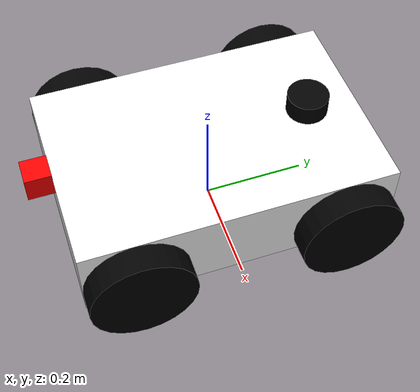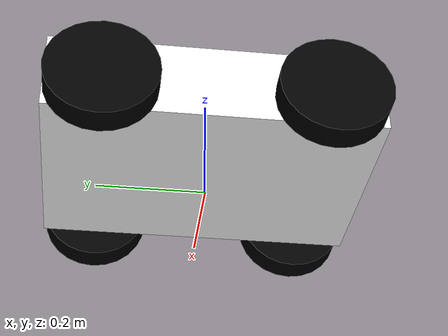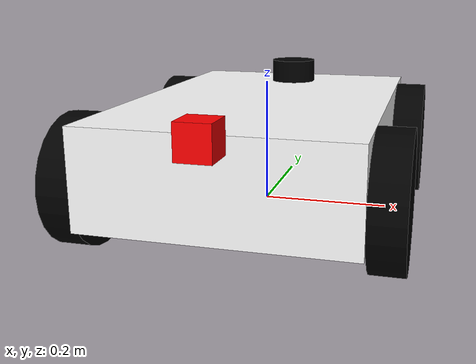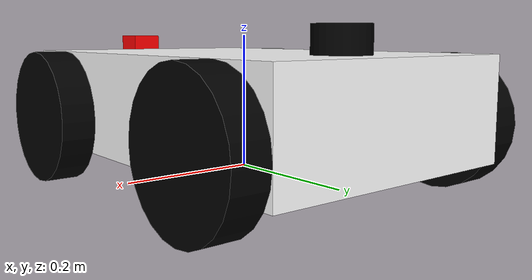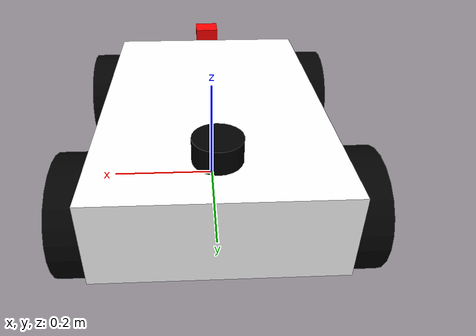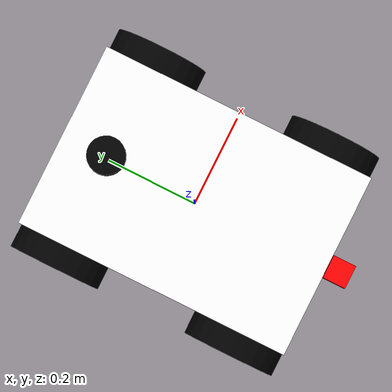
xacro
<?xml version="1.0"?>
<robot xmlns:xacro="http://www.ros.org/wiki/xacro"
    xmlns:gz="http://gazebosim.org/schema" name="robot">

    <xacro:include filename="robot_core.xacro" />
    <xacro:include filename="lidar.xacro" />
    <xacro:include filename="camera.xacro" />
    <xacro:include filename="$(find mecha_robot_desc)/model/robot.gazebo"/>

    <gazebo>
        <plugin filename="gz-sim-sensors-system" name="gz::sim::systems::Sensors">
            <render_engine>ogre</render_engine>
            <headless_rendering>true</headless_rendering>
        </plugin>
    </gazebo>

    <gazebo >

    <plugin filename="gz-sim-joint-state-publisher-system" name="gz::sim::systems::JointStatePublisher">
        <topic>joint_states</topic>
        <joint_name>wj_RF</joint_name>
        <joint_name>wj_RB</joint_name>
        <joint_name>wj_LF</joint_name>
        <joint_name>wj_LB</joint_name>
    </plugin>

    </gazebo>

</robot>

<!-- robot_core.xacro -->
<!-- 4 wheeled mecanum robot -->
<!-- Created by Justice John Owusu -->
<!-- Date 2026-03-18 -->
<!-- Updated for Mecanum Drive -->

<robot name="bob"
    xmlns:xacro="http://www.ros.org/wiki/xacro">

    <!-- dimensions of the body -->
    <xacro:property name="bx_dim" value="0.4"/>
    <xacro:property name="by_dim" value="0.6"/>
    <xacro:property name="bz_dim" value="0.15"/>

    <!-- Wheel dimensions -->
    <xacro:property name="w_rad" value="0.1"/>
    <xacro:property name="w_len" value="0.05"/>
    <xacro:property name="w_z" value="${2*w_rad - bz_dim/2}"/>

    <!-- Constants -->
    <xacro:property name="pi_const" value="3.14159265358"/>

    <!-- Densities -->
    <xacro:property name="b_dens" value="1"/>
    <xacro:property name="w_dens" value="1"/>

    <!-- Masses -->
    <xacro:property name="b_mass" value="${b_dens * bx_dim * by_dim * bz_dim}"/>
    <xacro:property name="w_mass" value="${w_dens * pi_const * w_rad * w_rad * w_len}"/>

    <!-- Wheel properties -->
    <xacro:property name="I_wheel" value="${0.5 * w_mass * w_rad * w_rad}"/>
    <xacro:property name="effort" value="1000"/>
    <xacro:property name="velocity" value="1000"/>
    <xacro:property name="friction" value="1.0"/>
    <xacro:property name="damping" value="1.0"/>

    <!-- Wheel inertia macro -->
    <xacro:macro name="wheel_inertia">
        <inertial>
            <origin rpy="0 0 0" xyz="0 0 0"/>
            <mass value="${w_mass}"/>
            <inertia ixx="${I_wheel}" ixy="0.0" ixz="0.0" iyy="${I_wheel}" iyz="0.0" izz="${I_wheel}"/>
        </inertial>
    </xacro:macro>

    <!-- Wheel link macro -->
    <!-- rpy_val lets each wheel pass in its own roller angle (+45 or -45 deg) -->
    <xacro:macro name="wheel_def" params="name rpy_val">
        <link name="${name}">
            <visual>
                <origin rpy="0 ${rpy_val} 0" xyz="0 0 0"/>
                <geometry>
                    <cylinder radius="${w_rad}" length="${w_len}"/>
                </geometry>
                <material name="black">
                    <color rgba="0 0 0 1"/>
                </material>
            </visual>

            <collision>
                <origin rpy="0 ${rpy_val} 0" xyz="0 0 0"/>
                <geometry>
                    <cylinder radius="${w_rad}" length="${w_len}"/>
                </geometry>
            </collision>

            <xacro:wheel_inertia/>
        </link>
    </xacro:macro>

    <!-- Dummy link -->
    <link name="dummy"/>

    <joint name="dummy_joint" type="fixed">
        <parent link="dummy"/>
        <child link="body"/>
        <origin rpy="0 0 0" xyz="0 0 ${w_rad}"/>
    </joint>

    <!-- Body link -->
    <link name="body">
        <visual>
            <origin rpy="0 0 0" xyz="0 0 0"/>
            <geometry>
                <box size="${bx_dim} ${by_dim} ${bz_dim}"/>
            </geometry>
            <material name="white">
                <color rgba="1 1 1 1"/>
            </material>
        </visual>

        <collision>
            <origin rpy="0 0 0" xyz="0 0 0"/>
            <geometry>
                <box size="${bx_dim} ${by_dim} ${bz_dim}"/>
            </geometry>
        </collision>

        <inertial>
            <origin rpy="0 0 0" xyz="0 0 0"/>
            <mass value="${b_mass}"/>
            <inertia ixx="${b_mass * (by_dim*by_dim + bz_dim*bz_dim) / 12.0}" ixy="0.0" ixz="0.0" iyy="${(1.0/12.0) * b_mass * (bx_dim*bx_dim + bz_dim*bz_dim)}" iyz="0.0" izz="${(1.0/12.0) * b_mass * (bx_dim*bx_dim + by_dim*by_dim)}"/>
        </inertial>
    </link>

    <!-- Wheel joints — axis is Y for mecanum -->
    <joint name="wj_LF" type="continuous">
        <parent link="body"/>
        <child link="LF_wheel"/>
        <origin xyz="${-bx_dim/2 - w_len/2} ${-by_dim/2 + w_rad} ${bz_dim/2 - w_rad}" rpy="0 0 0"/>
        <axis xyz="1 0 0"/>
        <limit effort="${effort}" velocity="${velocity}"/>
        <dynamics damping="${damping}" friction="${friction}"/>
    </joint>

    <joint name="wj_LB" type="continuous">
        <parent link="body"/>
        <child link="LB_wheel"/>
        <origin xyz="${-bx_dim/2 - w_len/2} ${by_dim/2 - w_rad} ${bz_dim/2 - w_rad}" rpy="0 0 0"/>
        <axis xyz="1 0 0"/>
        <limit effort="${effort}" velocity="${velocity}"/>
        <dynamics damping="${damping}" friction="${friction}"/>
    </joint>

    <joint name="wj_RF" type="continuous">
        <parent link="body"/>
        <child link="RF_wheel"/>
        <origin xyz="${bx_dim/2 + w_len/2} ${-by_dim/2 + w_rad} ${bz_dim/2 - w_rad}" rpy="0 0 0"/>
        <axis xyz="1 0 0"/>
        <limit effort="${effort}" velocity="${velocity}"/>
        <dynamics damping="${damping}" friction="${friction}"/>
    </joint>

    <joint name="wj_RB" type="continuous">
        <parent link="body"/>
        <child link="RB_wheel"/>
        <origin xyz="${bx_dim/2 + w_len/2} ${by_dim/2 - w_rad} ${bz_dim/2 - w_rad}" rpy="0 0 0"/>
        <axis xyz="1 0 0"/>
        <limit effort="${effort}" velocity="${velocity}"/>
        <dynamics damping="${damping}" friction="${friction}"/>
    </joint>

    <!-- Wheel links                    -->
    <!-- LF and RB share one diagonal   -->
    <!-- RF and LB share the other      -->

    <!-- Left-leaning rollers  (+45 deg) : LF and RB -->
    <xacro:wheel_def name="LF_wheel" rpy_val="${pi_const/2}"/>
    <xacro:wheel_def name="RB_wheel" rpy_val="${pi_const/2}"/>

    <!-- Right-leaning rollers (-45 deg) : RF and LB -->
    <xacro:wheel_def name="RF_wheel" rpy_val="${-pi_const/2}"/>
    <xacro:wheel_def name="LB_wheel" rpy_val="${-pi_const/2}"/>

</robot>

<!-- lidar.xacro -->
<robot xmlns:xacro="http://www.ros.org/wiki/xacro">

    <xacro:property name = "l_len" value = "0.04"/>
    <xacro:property name = "l_rad" value = ".04"/>

    <joint name="laser_joint" type="fixed">
        <parent link="body"/>
        <child link="laser_frame"/>
        <origin xyz="0 ${by_dim/3} ${bz_dim/2 + 0.04/2}" rpy="0 0 0"/>
    </joint>

    <link name="laser_frame">
        <inertial>
            <origin xyz="0 0 0" rpy="0 0 0"/>
            <mass value="0.125"/>
            <inertia ixx="0.001" ixy="0" ixz="0" iyy="0.001" iyz="0" izz="0.001" />
        </inertial>

        <collision>
            <origin xyz="0 0 0" rpy="0 0 0"/>
            <geometry>
                <cylinder radius="${l_rad}" length="${l_len}"/>
            </geometry>
        </collision>

        <visual>
            <origin xyz="0 0 0" rpy="0 0 0"/>
            <geometry>
                <cylinder radius="${l_rad}" length="${l_len}"/>
            </geometry>
            <material name = "black">
                <color rgba = "0 0 0 1"/>
            </material>
        </visual>
    </link>

    <gazebo reference="laser_frame">
        <sensor name="laser" type="gpu_lidar">
            <pose>0 0 0 0 0 0</pose>
            <visualize>true</visualize>
            <update_rate>10</update_rate>
            <lidar>
                <scan>
                    <horizontal>
                        <samples>360</samples>
                        <resolution>1</resolution>
                        <min_angle>-3.14159</min_angle>
                        <max_angle>3.14159</max_angle>
                    </horizontal>
                </scan>
                <range>
                    <min>0.3</min>
                    <max>12</max>
                    <resolution>0.01</resolution>
                </range>
            </lidar>
            <topic>scan</topic>
            <gz_frame_id>laser_frame</gz_frame_id>
        </sensor>
    </gazebo>

</robot>

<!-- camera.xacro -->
<robot xmlns:xacro="http://www.ros.org/wiki/xacro">

    <xacro:property name="cam_len" value="0.05"/>
    <xacro:property name="cam_wid" value="0.05"/>
    <xacro:property name="cam_hgt" value="0.05"/>

    <joint name="camera_joint" type="fixed">
        <parent link="body"/>
        <child link="camera_frame"/>
        <origin xyz="0 ${-by_dim/2 - cam_wid/2} ${bz_dim/2}" rpy="0 0 ${-pi_const/2}"/>
    </joint>

    <link name="camera_frame">
        <inertial>
            <origin xyz="0 0 0" rpy="0 0 0"/>
            <mass value="0.05"/>
            <inertia ixx="0.0001" ixy="0" ixz="0" iyy="0.0001" iyz="0" izz="0.0001"/>
        </inertial>

        <collision>
            <origin xyz="0 0 0" rpy="0 0 0"/>
            <geometry>
                <box size="${cam_len} ${cam_wid} ${cam_hgt}"/>
            </geometry>
        </collision>

        <visual>
            <origin xyz="0 0 0" rpy="0 0 0"/>
            <geometry>
                <box size="${cam_len} ${cam_wid} ${cam_hgt}"/>
            </geometry>
            <material name="red">
                <color rgba="1 0 0 1"/>
            </material>
        </visual>
    </link>

    <!-- optical frame — ROS convention is Z forward, X right, Y down      -->
    <!-- camera_frame has Z up (robot convention) so we need this rotation  -->
    <joint name="camera_optical_joint" type="fixed">
        <parent link="camera_frame"/>
        <child link="camera_optical_frame"/>
        <origin xyz="0 0 0" rpy="${-pi_const/2} 0 ${-pi_const/2}"/>
    </joint>

    <link name="camera_optical_frame"/>

    <gazebo reference="camera_frame">
        <sensor name="camera" type="camera">
            <pose>0 0 0 0 0 0</pose>
            <visualize>true</visualize>
            <update_rate>30</update_rate>
            <camera>
                <horizontal_fov>1.0856</horizontal_fov>                <!-- ~62 degrees -->
                <image>
                    <width>640</width>
                    <height>480</height>
                    <format>R8G8B8</format>
                </image>
                <clip>
                    <near>0.05</near>
                    <far>15</far>
                </clip>
                <noise>
                    <type>gaussian</type>
                    <mean>0.0</mean>
                    <stddev>0.007</stddev>
                </noise>
            </camera>
            <topic>camera/image</topic>
            <gz_frame_id>camera_optical_frame</gz_frame_id>
        </sensor>
    </gazebo>

</robot>
